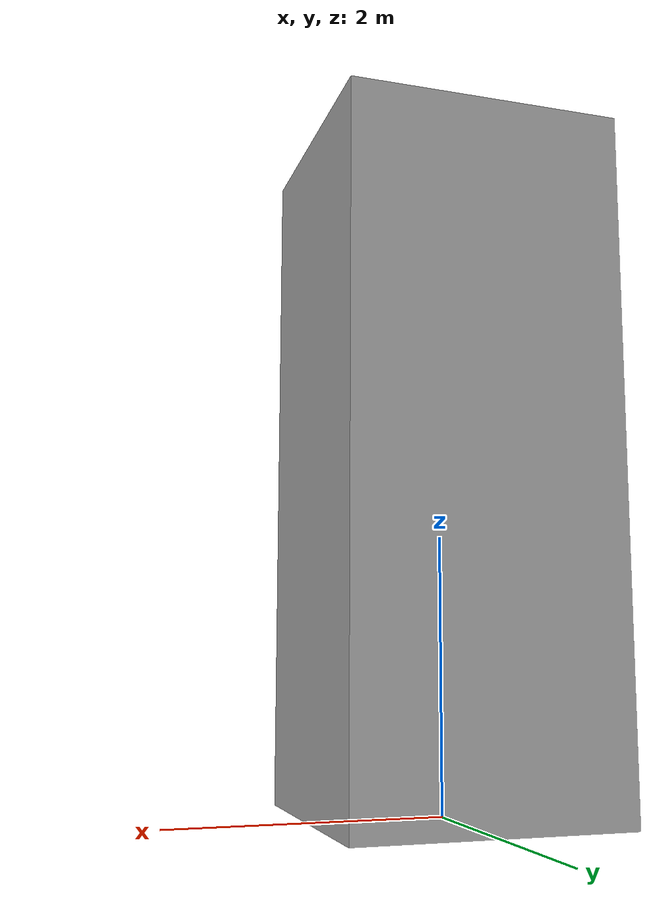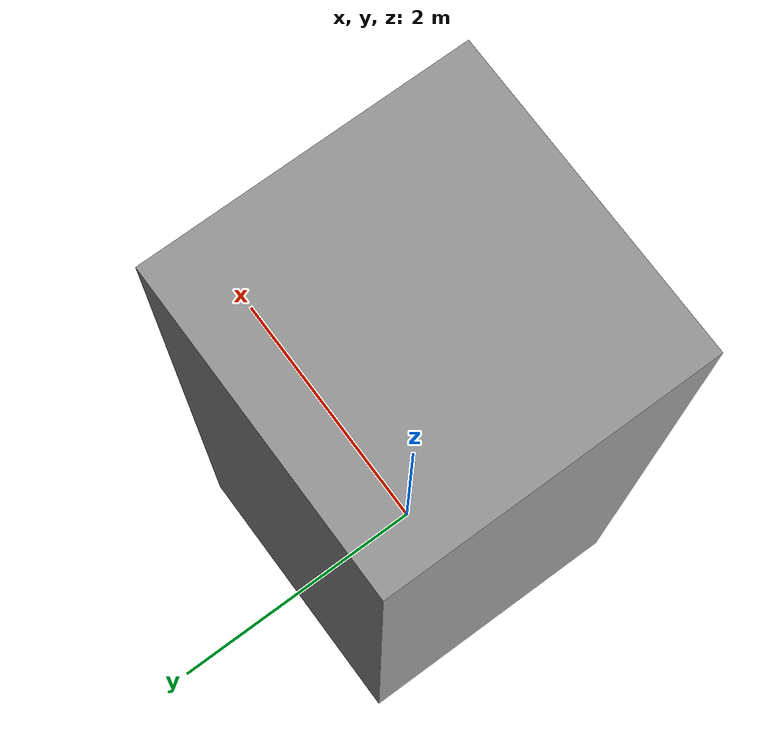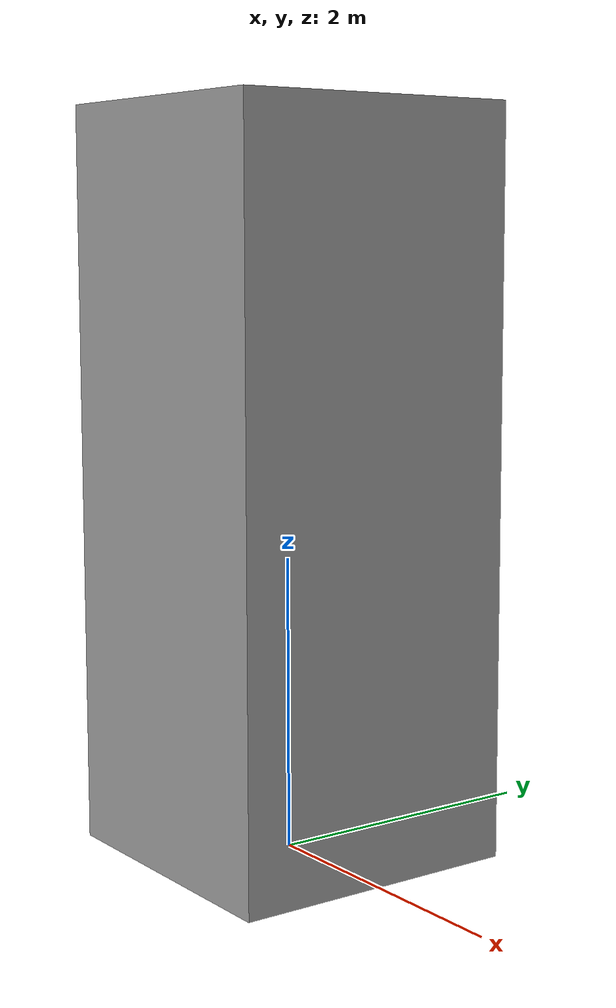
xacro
<?xml version="1.0"?>
<robot name="pedestrian_block" xmlns:xacro="http://ros.org/wiki/xacro">

  <link name="base_link"/>

  <joint name="pedestrian_joint" type="fixed">
    <parent link="base_link"/>
    <child  link="pedestrian_link"/>
    <origin xyz="0.0 0.0 2.5" rpy="0.0 0.0 0.0"/>
  </joint>
  <link name="pedestrian_link">
    <inertial>
      <origin xyz="0 0 0" rpy="0 0 0"/>
      <mass value="1.0"/>
      <inertia ixx="0.001" ixy="0.0" ixz="0.0" iyy="0.001" iyz="0.0" izz="0.001"/>
    </inertial>
    <visual>
      <origin xyz="0.0 0.0 0.0" rpy="0.0 0.0 0.0" />
      <geometry>
        <box size="2.0 2.0 5.0" />
      </geometry>
      <material name="gray" />
    </visual>
    <collision>
      <origin xyz="0.0 0.0 0.0" rpy="0.0 0.0 0.0" />
      <geometry>
        <box size="2.0 2.0 5.0" />
      </geometry>
    </collision>
  </link>
  <gazebo reference="pedestrian_link">
    <material>Gazebo/Red</material>
    <static>true</static>
  </gazebo>

   <!--rpy -> xyz axis-->

</robot>
